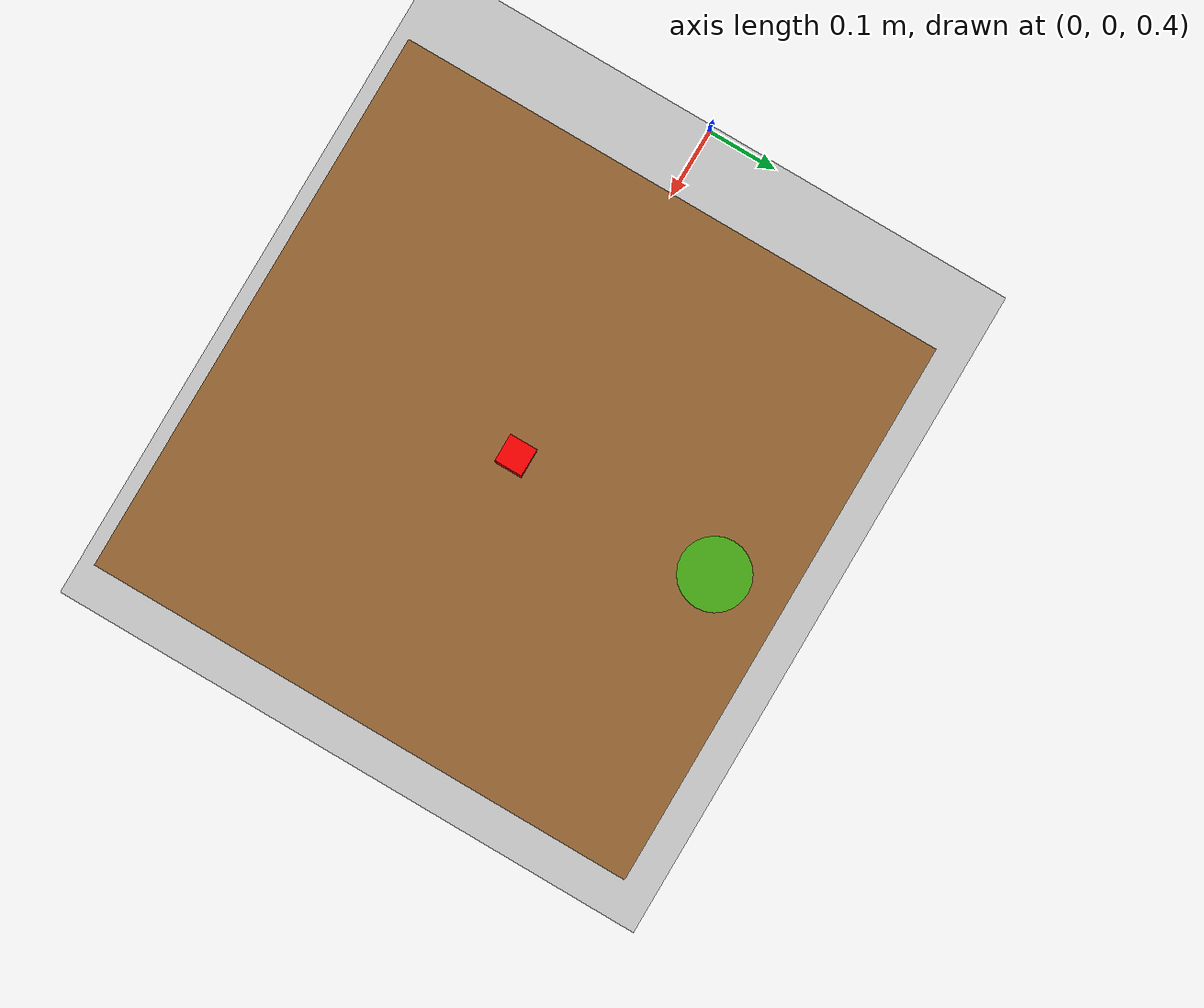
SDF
<?xml version="1.0" ?>
<sdf version="1.9">
  <world name="pick_place_world">

    <!-- Physics -->
    <physics name="1ms" type="ignored">
      <max_step_size>0.001</max_step_size>
      <real_time_factor>1.0</real_time_factor>
    </physics>

    <!-- Plugins -->
    <plugin filename="gz-sim-physics-system" name="gz::sim::systems::Physics"/>
    <plugin filename="gz-sim-user-commands-system" name="gz::sim::systems::UserCommands"/>
    <plugin filename="gz-sim-scene-broadcaster-system" name="gz::sim::systems::SceneBroadcaster"/>
    <plugin filename="gz-sim-contact-system" name="gz::sim::systems::Contact"/>

    <!-- Force Ogre1 rendering engine (VMware does not support Ogre2) -->
    <scene>
      <ambient>0.4 0.4 0.4 1</ambient>
      <background>0.7 0.7 0.7 1</background>
      <engine>ogre</engine>
    </scene>

    <!-- Lighting -->
    <light name="sun" type="directional">
      <cast_shadows>true</cast_shadows>
      <pose>0 0 10 0 0 0</pose>
      <diffuse>0.8 0.8 0.8 1</diffuse>
      <specular>0.2 0.2 0.2 1</specular>
      <direction>-0.5 0.1 -0.9</direction>
      <attenuation>
        <range>1000</range>
        <constant>0.9</constant>
        <linear>0.01</linear>
        <quadratic>0.001</quadratic>
      </attenuation>
    </light>

    <!-- Ground Plane -->
    <model name="ground_plane">
      <static>true</static>
      <link name="link">
        <collision name="collision">
          <geometry>
            <plane>
              <normal>0 0 1</normal>
              <size>20 20</size>
            </plane>
          </geometry>
        </collision>
        <visual name="visual">
          <geometry>
            <plane>
              <normal>0 0 1</normal>
              <size>20 20</size>
            </plane>
          </geometry>
          <material>
            <ambient>0.8 0.8 0.8 1</ambient>
            <diffuse>0.8 0.8 0.8 1</diffuse>
            <specular>0.8 0.8 0.8 1</specular>
          </material>
        </visual>
      </link>
    </model>

    <!-- Table -->
    <model name="table">
      <static>true</static>
      <pose>0.5 0 0.4 0 0 0</pose>
      <link name="table_link">
        <collision name="table_collision">
          <geometry>
            <box>
              <size>0.8 0.8 0.05</size>
            </box>
          </geometry>
        </collision>
        <visual name="table_visual">
          <geometry>
            <box>
              <size>0.8 0.8 0.05</size>
            </box>
          </geometry>
          <material>
            <ambient>0.6 0.4 0.2 1</ambient>
            <diffuse>0.6 0.4 0.2 1</diffuse>
          </material>
        </visual>
      </link>
    </model>

    <!-- Pick object (red cube at pick position) -->
    <model name="pick_object">
      <pose>0.5 0.0 0.445 0 0 0</pose>
      <link name="object_link">
        <inertial>
          <mass>0.1</mass>
          <inertia>
            <!-- Correct inertia for 0.04m cube: I = m/6 * s^2 = 0.1/6 * 0.0016 = 2.667e-5 -->
            <ixx>0.0000267</ixx>
            <iyy>0.0000267</iyy>
            <izz>0.0000267</izz>
          </inertia>
        </inertial>
        <collision name="object_collision">
          <geometry>
            <box>
              <size>0.04 0.04 0.04</size>
            </box>
          </geometry>
          <surface>
            <friction>
              <ode>
                <mu>2.0</mu>
                <mu2>2.0</mu2>
              </ode>
            </friction>
            <contact>
              <ode>
                <kp>1e6</kp>
                <kd>100</kd>
                <max_vel>0.1</max_vel>
                <min_depth>0.001</min_depth>
              </ode>
            </contact>
          </surface>
        </collision>
        <visual name="object_visual">
          <geometry>
            <box>
              <size>0.04 0.04 0.04</size>
            </box>
          </geometry>
          <material>
            <ambient>1 0 0 1</ambient>
            <diffuse>1 0 0 1</diffuse>
          </material>
        </visual>
      </link>
    </model>

    <!-- Place zone marker (green cylinder at place position) -->
    <model name="place_zone">
      <static>true</static>
      <pose>0.5 0.3 0.425 0 0 0</pose>
      <link name="zone_link">
        <collision name="zone_collision">
          <geometry>
            <cylinder>
              <radius>0.05</radius>
              <length>0.001</length>
            </cylinder>
          </geometry>
        </collision>
        <visual name="zone_visual">
          <geometry>
            <cylinder>
              <radius>0.05</radius>
              <length>0.001</length>
            </cylinder>
          </geometry>
          <material>
            <ambient>0 1 0 0.5</ambient>
            <diffuse>0 1 0 0.5</diffuse>
          </material>
        </visual>
      </link>
    </model>

  </world>
</sdf>
